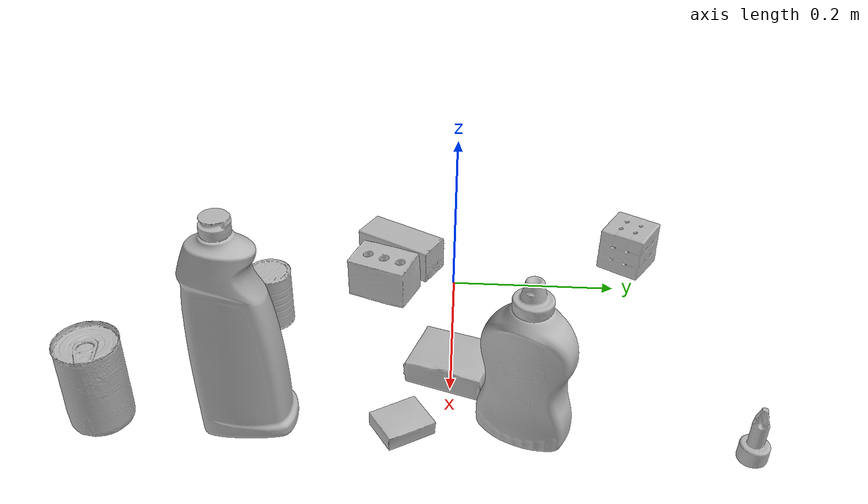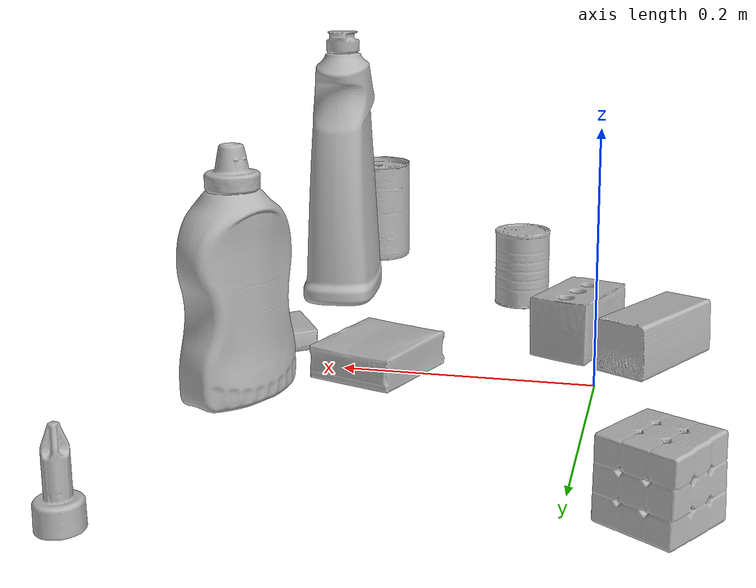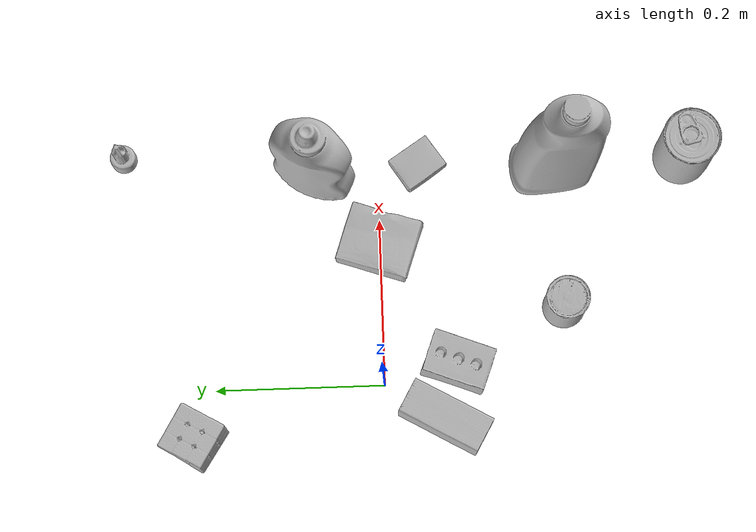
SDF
<sdf version="1.4">
  <world name="default">
    <light name="light1" type="point">
      <pose>0 0 1 0 0 0</pose>
      <diffuse>3 3 3 1</diffuse>
      <specular>3 3 3 1</specular>
    </light>
    <light name="light2" type="point">
      <pose>0 0.5 2 0 0 0</pose>
      <diffuse>1 1 1 1</diffuse>
      <specular>1 1 1 1</specular>
    </light>
    <light name="light3" type="point">
      <pose>0 0.5 2 0 0 0</pose>
      <diffuse>3 3 3 1</diffuse>
      <specular>3 3 3 1</specular>
    </light>
    <scene>
      <ambient>0.7 0.7 0.7</ambient>
    </scene>
    <model name="bottle1">
      <link name="link_bottle1">
        <collision name="default">
          <geometry>
            <mesh>
              <uri>model://bleach_cleanser/collision_meshes/collision.obj</uri>
              <scale>1.0 1.0 1.0</scale>
            </mesh>
          </geometry>
          <surface>
            <friction>
              <ode>
                <mu>0.5</mu>
                <mu2>0.5</mu2>
              </ode>
            </friction>
          <contact>
        <ode>
            <max_vel>0</max_vel>
            <min_depth>0.0001</min_depth>
            <kp>1e8</kp>
        </ode>
    </contact></surface>
        </collision>
        <visual name="default">
          <geometry>
            <mesh>
              <uri>model://bleach_cleanser/visual_meshes/visual.dae</uri>
              <scale>1.0 1.0 1.0</scale>
            </mesh>
          </geometry>
        </visual>
        <inertial>
          <mass>1.1050143241882324</mass>
          <pose>0.00012193183647468686 0.0037838828284293413 -0.02442161738872528 -0.07381670616137478 0.0004201160282461273 -0.006875061809122935</pose>
          <inertia>
            <ixx>0.0053782654</ixx>
            <iyy>0.005011756</iyy>
            <izz>0.00091954356</izz>
            <ixy>0</ixy>
            <ixz>0</ixz>
            <iyz>0</iyz>
          </inertia>
        </inertial>
      </link>
      <pose>0.2589549124240875 -0.20953620970249176 0.12578412890434265 -0.00020031015653453876 1.690041751498616e-05 -3.07006478065504</pose>
    </model>
    <model name="bottle2">
      <link name="link_bottle2">
        <collision name="default">
          <geometry>
            <mesh>
              <uri>model://mustard_bottle/collision_meshes/collision.obj</uri>
              <scale>1.0 1.0 1.0</scale>
            </mesh>
          </geometry>
          <surface>
            <friction>
              <ode>
                <mu>0.5</mu>
                <mu2>0.5</mu2>
              </ode>
            </friction>
          <contact>
        <ode>
            <max_vel>0</max_vel>
            <min_depth>0.0001</min_depth>
            <kp>1e8</kp>
        </ode>
    </contact></surface>
        </collision>
        <visual name="default">
          <geometry>
            <mesh>
              <uri>model://mustard_bottle/visual_meshes/visual.dae</uri>
              <scale>1.0 1.0 1.0</scale>
            </mesh>
          </geometry>
        </visual>
        <inertial>
          <mass>0.622285008430481</mass>
          <pose>0.0005032453336752951 -0.0001564739941386506 -0.0174757931381464 0.0004182326458762318 0.0009465782998157723 0.024853714910341117</pose>
          <inertia>
            <ixx>0.0017280002</ixx>
            <iyy>0.0015161741</iyy>
            <izz>0.00045541534</izz>
            <ixy>0</ixy>
            <ixz>0</ixz>
            <iyz>0</iyz>
          </inertia>
        </inertial>
      </link>
      <pose>0.25904184579849243 0.07622014731168747 0.09615197777748108 1.5034883036378895e-05 1.708454844721211e-05 -0.45683077531386385</pose>
    </model>
    <model name="toy1">
      <link name="link_toy1">
        <collision name="default">
          <geometry>
            <mesh>
              <uri>model://foam_brick/collision_meshes/collision.obj</uri>
              <scale>1.0 1.0 1.0</scale>
            </mesh>
          </geometry>
          <surface>
            <friction>
              <ode>
                <mu>0.5</mu>
                <mu2>0.5</mu2>
              </ode>
            </friction>
          <contact>
        <ode>
            <max_vel>0</max_vel>
            <min_depth>0.0001</min_depth>
            <kp>1e8</kp>
        </ode>
    </contact></surface>
        </collision>
        <visual name="default">
          <geometry>
            <mesh>
              <uri>model://foam_brick/visual_meshes/visual.dae</uri>
              <scale>1.0 1.0 1.0</scale>
            </mesh>
          </geometry>
        </visual>
        <inertial>
          <mass>0.1664208173751831</mass>
          <pose>-0.00025224717683158815 0.0003458438441157341 -0.00025321010616607964 -0.2940189404221327 0.017274440573450563 -0.0007449871782747126</pose>
          <inertia>
            <ixx>7.269573e-05</ixx>
            <iyy>0.00011606247</iyy>
            <izz>0.000117537464</izz>
            <ixy>0</ixy>
            <ixz>0</ixz>
            <iyz>0</iyz>
          </inertia>
        </inertial>
      </link>
      <pose>0.021902719512581825 -0.08685612678527832 0.02592279575765133 0.013416992732471522 0.004152451088300972 1.2091242927809194</pose>
    </model>
    <model name="toy2">
      <link name="link_toy2">
        <collision name="default">
          <geometry>
            <mesh>
              <uri>model://d_toy_airplane/collision_meshes/collision.obj</uri>
              <scale>1.0 1.0 1.0</scale>
            </mesh>
          </geometry>
          <surface>
            <friction>
              <ode>
                <mu>0.5</mu>
                <mu2>0.5</mu2>
              </ode>
            </friction>
          <contact>
        <ode>
            <max_vel>0</max_vel>
            <min_depth>0.0001</min_depth>
            <kp>1e8</kp>
        </ode>
    </contact></surface>
        </collision>
        <visual name="default">
          <geometry>
            <mesh>
              <uri>model://d_toy_airplane/visual_meshes/visual.dae</uri>
              <scale>1.0 1.0 1.0</scale>
            </mesh>
          </geometry>
        </visual>
        <inertial>
          <mass>0.021938346326351166</mass>
          <pose>9.410325583303347e-05 -5.8093231928069144e-05 -0.01172809861600399 0.0002669142468379238 0.0046790018194854816 0.5194488187392164</pose>
          <inertia>
            <ixx>6.5766894e-06</ixx>
            <iyy>6.581649e-06</iyy>
            <izz>1.9855454e-06</izz>
            <ixy>0</ixy>
            <ixz>0</ixz>
            <iyz>0</iyz>
          </inertia>
        </inertial>
      </link>
      <pose>0.2842896580696106 0.30609458684921265 0.03333910182118416 0.00021626718030818507 2.8528274862822243e-05 -0.20959878761590395</pose>
    </model>
    <model name="can1">
      <link name="link_can1">
        <collision name="default">
          <geometry>
            <mesh>
              <uri>model://tomato_soup_can/collision_meshes/collision.obj</uri>
              <scale>1.0 1.0 1.0</scale>
            </mesh>
          </geometry>
          <surface>
            <friction>
              <ode>
                <mu>0.5</mu>
                <mu2>0.5</mu2>
              </ode>
            </friction>
          <contact>
        <ode>
            <max_vel>0</max_vel>
            <min_depth>0.0001</min_depth>
            <kp>1e8</kp>
        </ode>
    </contact></surface>
        </collision>
        <visual name="default">
          <geometry>
            <mesh>
              <uri>model://tomato_soup_can/visual_meshes/visual.dae</uri>
              <scale>1.0 1.0 1.0</scale>
            </mesh>
          </geometry>
        </visual>
        <inertial>
          <mass>0.39673706889152527</mass>
          <pose>0.00012652271834667772 0.00010805520287249237 -0.0017973972717300057 0.007020066809275346 0.000422998323222239 -0.009903841103285913</pose>
          <inertia>
            <ixx>0.00043498844</ixx>
            <iyy>0.00043247454</iyy>
            <izz>0.00022545052</izz>
            <ixy>0</ixy>
            <ixz>0</ixz>
            <iyz>0</iyz>
          </inertia>
        </inertial>
      </link>
      <pose>0.2647962272167206 -0.36553922295570374 0.05127399414777756 -1.3460629040103328e-07 -6.77284654796043e-08 1.526227555837912</pose>
    </model>
    <model name="can2">
      <link name="link_can2">
        <collision name="default">
          <geometry>
            <mesh>
              <uri>model://master_chef_can/collision_meshes/collision.obj</uri>
              <scale>0.5 0.5 0.5</scale>
            </mesh>
          </geometry>
          <surface>
            <friction>
              <ode>
                <mu>0.5</mu>
                <mu2>0.5</mu2>
              </ode>
            </friction>
          <contact>
        <ode>
            <max_vel>0</max_vel>
            <min_depth>0.0001</min_depth>
            <kp>1e8</kp>
        </ode>
    </contact></surface>
        </collision>
        <visual name="default">
          <geometry>
            <mesh>
              <uri>model://master_chef_can/visual_meshes/visual.dae</uri>
              <scale>0.5 0.5 0.5</scale>
            </mesh>
          </geometry>
        </visual>
        <inertial>
          <mass>0.08835740387439728</mass>
          <pose>-4.6619654312962666e-05 1.3926853625889635e-07 -5.079947004560381e-05 -0.0017995147102642629 0.0006479189020740588 -0.6102650934471076</pose>
          <inertia>
            <ixx>5.1859814e-05</ixx>
            <iyy>5.1478128e-05</iyy>
            <izz>2.8656508e-05</izz>
            <ixy>0</ixy>
            <ixz>0</ixz>
            <iyz>0</iyz>
          </inertia>
        </inertial>
      </link>
      <pose>0.08679448068141937 -0.21574263274669647 0.03530200198292732 -1.611611537290513e-06 -7.927723356524441e-07 0.10419249471087778</pose>
    </model>
    <model name="box1">
      <link name="link_box1">
        <collision name="default">
          <geometry>
            <mesh>
              <uri>model://wood_block/collision_meshes/collision.obj</uri>
              <scale>0.5 0.5 0.5</scale>
            </mesh>
          </geometry>
          <surface>
            <friction>
              <ode>
                <mu>0.5</mu>
                <mu2>0.5</mu2>
              </ode>
            </friction>
          <contact>
        <ode>
            <max_vel>0</max_vel>
            <min_depth>0.0001</min_depth>
            <kp>1e8</kp>
        </ode>
    </contact></surface>
        </collision>
        <visual name="default">
          <geometry>
            <mesh>
              <uri>model://wood_block/visual_meshes/visual.dae</uri>
              <scale>0.5 0.5 0.5</scale>
            </mesh>
          </geometry>
        </visual>
        <inertial>
          <mass>0.15377527475357056</mass>
          <pose>-2.9066577553749084e-06 -0.000285404734313488 0.00013204291462898254 -0.05220825990774677 -0.0051926953585221414 -0.0068613782788382646</pose>
          <inertia>
            <ixx>5.1443654e-05</ixx>
            <iyy>0.00016251049</iyy>
            <izz>0.00016190263</izz>
            <ixy>0</ixy>
            <ixz>0</ixz>
            <iyz>0</iyz>
          </inertia>
        </inertial>
      </link>
      <pose>-0.041995372623205185 -0.06978044658899307 0.022138670086860657 -1.5548855750299713 0.00481867885851337 1.0498491632664573</pose>
    </model>
    <model name="box2">
      <link name="link_box2">
        <collision name="default">
          <geometry>
            <mesh>
              <uri>model://rubiks_cube/collision_meshes/collision.obj</uri>
              <scale>1.0 1.0 1.0</scale>
            </mesh>
          </geometry>
          <surface>
            <friction>
              <ode>
                <mu>0.5</mu>
                <mu2>0.5</mu2>
              </ode>
            </friction>
          <contact>
        <ode>
            <max_vel>0</max_vel>
            <min_depth>0.0001</min_depth>
            <kp>1e8</kp>
        </ode>
    </contact></surface>
        </collision>
        <visual name="default">
          <geometry>
            <mesh>
              <uri>model://rubiks_cube/visual_meshes/visual.dae</uri>
              <scale>1.0 1.0 1.0</scale>
            </mesh>
          </geometry>
        </visual>
        <inertial>
          <mass>0.2856966555118561</mass>
          <pose>2.6721041649580002e-05 5.2569666877388954e-05 -7.264316082000732e-06 -0.05467209736319516 -0.09813912050272719 -0.034455106160143086</pose>
          <inertia>
            <ixx>0.00015786657</ixx>
            <iyy>0.00015713037</iyy>
            <izz>0.00015917476</izz>
            <ixy>0</ixy>
            <ixz>0</ixz>
            <iyz>0</iyz>
          </inertia>
        </inertial>
      </link>
      <pose>-0.05662868916988373 0.2236611545085907 0.028678975999355316 -3.2888678909229167e-06 -5.316736687986956e-07 1.030151089348594</pose>
    </model>
    <model name="box3">
      <link name="link_box3">
        <collision name="default">
          <geometry>
            <mesh>
              <uri>model://gelatin_box/collision_meshes/collision.obj</uri>
              <scale>1.0 1.0 1.0</scale>
            </mesh>
          </geometry>
          <surface>
            <friction>
              <ode>
                <mu>0.5</mu>
                <mu2>0.5</mu2>
              </ode>
            </friction>
          <contact>
        <ode>
            <max_vel>0</max_vel>
            <min_depth>0.0001</min_depth>
            <kp>1e8</kp>
        </ode>
    </contact></surface>
        </collision>
        <visual name="default">
          <geometry>
            <mesh>
              <uri>model://gelatin_box/visual_meshes/visual.dae</uri>
              <scale>1.0 1.0 1.0</scale>
            </mesh>
          </geometry>
        </visual>
        <inertial>
          <mass>0.24612535536289215</mass>
          <pose>0.0004319618456065655 0.00011156871914863586 -0.00036403213744051754 -0.0010503719772071295 -0.004755818223732799 0.016440561334178715</pose>
          <inertia>
            <ixx>0.00017374444</ixx>
            <iyy>0.00012410474</iyy>
            <izz>0.00026447774</izz>
            <ixy>0</ixy>
            <ixz>0</ixz>
            <iyz>0</iyz>
          </inertia>
        </inertial>
      </link>
      <pose>0.17081528902053833 0.0010723603190854192 0.015168311074376106 0.005597461364909305 -0.007304556294087419 -0.3327830870313841</pose>
    </model>
    <model name="box4">
      <link name="link_box4">
        <collision name="default">
          <geometry>
            <mesh>
              <uri>model://pudding_box/collision_meshes/collision.obj</uri>
              <scale>0.5 0.5 0.5</scale>
            </mesh>
          </geometry>
          <surface>
            <friction>
              <ode>
                <mu>0.5</mu>
                <mu2>0.5</mu2>
              </ode>
            </friction>
          <contact>
        <ode>
            <max_vel>0</max_vel>
            <min_depth>0.0001</min_depth>
            <kp>1e8</kp>
        </ode>
    </contact></surface>
        </collision>
        <visual name="default">
          <geometry>
            <mesh>
              <uri>model://pudding_box/visual_meshes/visual.dae</uri>
              <scale>0.5 0.5 0.5</scale>
            </mesh>
          </geometry>
        </visual>
        <inertial>
          <mass>0.025328172370791435</mass>
          <pose>0.00024474109522998333 0.00040339428232982755 -0.0002594413817860186 0.00521310085836893 -0.006603797787762854 0.020079828890944847</pose>
          <inertia>
            <ixx>7.15805e-06</ixx>
            <iyy>4.8159864e-06</iyy>
            <izz>1.0570731e-05</izz>
            <ixy>0</ixy>
            <ixz>0</ixz>
            <iyz>0</iyz>
          </inertia>
        </inertial>
      </link>
      <pose>0.2661103904247284 -0.04792927950620651 0.009862901642918587 0.022348423439020895 -0.011391821164373329 -2.561950171352706</pose>
    </model>
  <physics type="ode">
      <max_contacts>50</max_contacts>
      <ode>
        <solver>
          <type>quick</type>
          <iters>75</iters>
        </solver>
        <constraints>
          <contact_max_correcting_vel>0</contact_max_correcting_vel>
          <contact_surface_layer>0</contact_surface_layer>
        </constraints>
      </ode>
    </physics></world>
</sdf>
